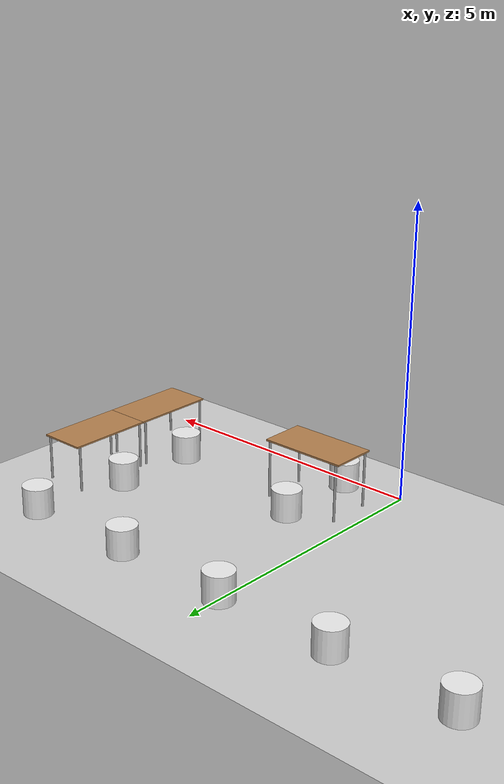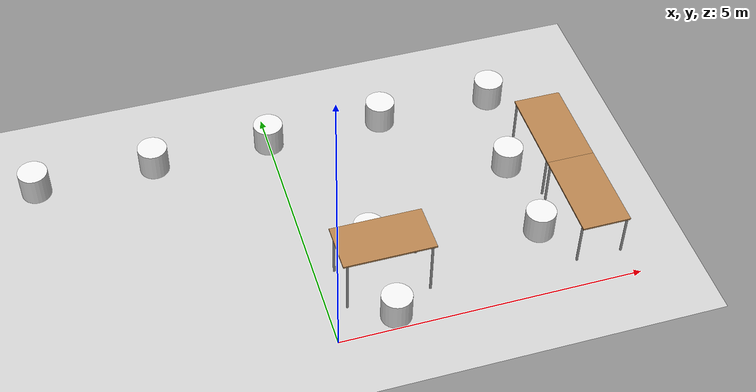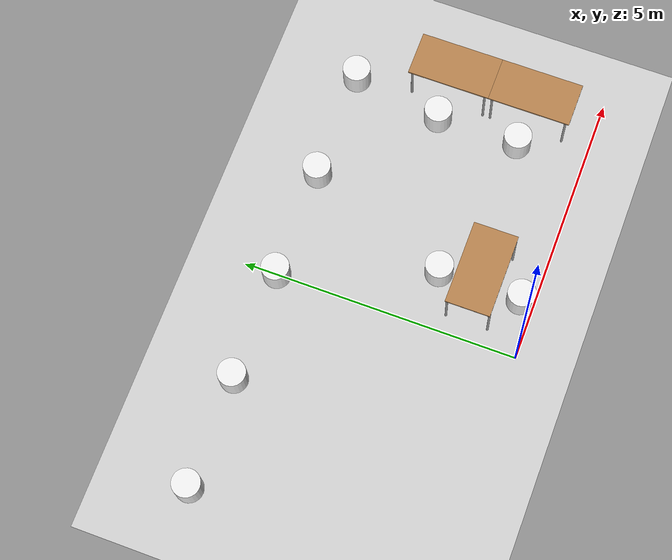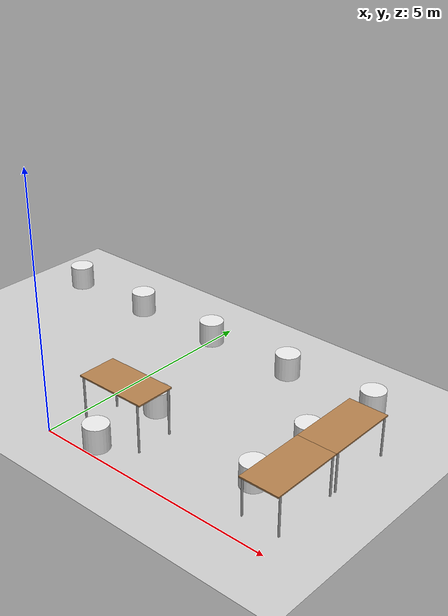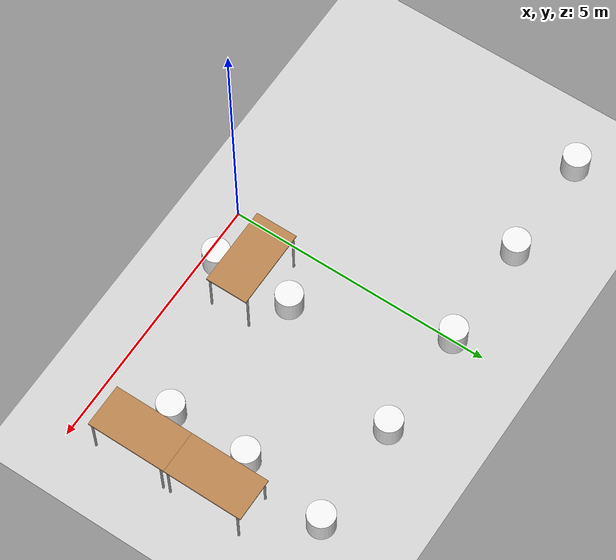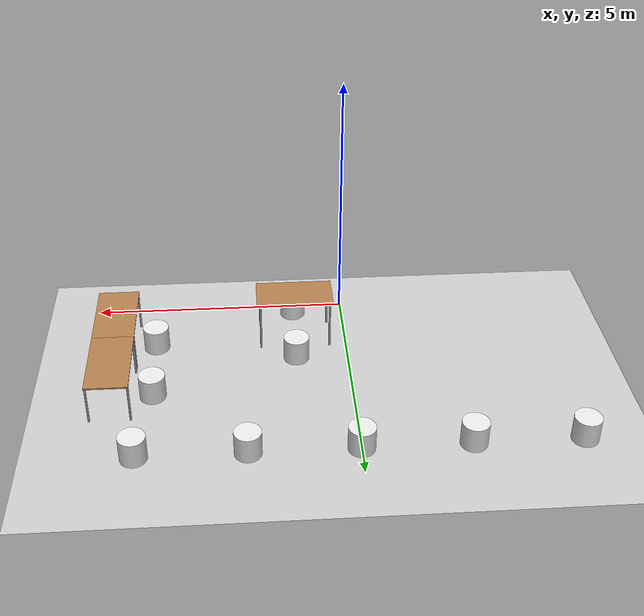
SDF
<sdf version="1.6">
 <world name="default">
  <model name="ground_plane">
   <static>1</static>
   <link name="link">
    <collision name="collision">
     <geometry><plane><normal>0 0 1</normal><size>100 100</size></plane></geometry>
     <surface>
      <contact><collide_bitmask>65535</collide_bitmask></contact>
      <friction><ode><mu>100</mu><mu2>50</mu2></ode></friction>
     </surface>
    </collision>
    <visual name="visual">
     <cast_shadows>0</cast_shadows>
     <geometry><plane><normal>0 0 1</normal><size>100 100</size></plane></geometry>
     <material>
      <script><uri>file://media/materials/scripts/gazebo.material</uri><name>Gazebo/Grey</name></script>
     </material>
    </visual>
   </link>
  </model>
  <model name="table">
   <static>1</static>
   <link name="link">
    <collision name="surface">
     <pose>0 0 1 0 -0 0</pose>
     <geometry><box><size>1.5 0.8 0.03</size></box></geometry>
     <surface><friction><ode><mu>0.6</mu><mu2>0.6</mu2></ode></friction></surface>
    </collision>
    <visual name="visual1">
     <pose>0 0 1 0 -0 0</pose>
     <geometry><box><size>1.5 0.8 0.03</size></box></geometry>
     <material>
      <script><uri>file://media/materials/scripts/gazebo.material</uri><name>Gazebo/Wood</name></script>
     </material>
    </visual>
    <collision name="front_left_leg">
     <pose>0.68 0.38 0.5 0 -0 0</pose>
     <geometry><cylinder><radius>0.02</radius><length>1</length></cylinder></geometry>
    </collision>
    <visual name="front_left_leg">
     <pose>0.68 0.38 0.5 0 -0 0</pose>
     <geometry><cylinder><radius>0.02</radius><length>1</length></cylinder></geometry>
     <material>
      <script><uri>file://media/materials/scripts/gazebo.material</uri><name>Gazebo/Grey</name></script>
     </material>
    </visual>
    <collision name="front_right_leg">
     <pose>0.68 -0.38 0.5 0 -0 0</pose>
     <geometry><cylinder><radius>0.02</radius><length>1</length></cylinder></geometry>
    </collision>
    <visual name="front_right_leg">
     <pose>0.68 -0.38 0.5 0 -0 0</pose>
     <geometry><cylinder><radius>0.02</radius><length>1</length></cylinder></geometry>
     <material>
      <script><uri>file://media/materials/scripts/gazebo.material</uri><name>Gazebo/Grey</name></script>
     </material>
    </visual>
    <collision name="back_right_leg">
     <pose>-0.68 -0.38 0.5 0 -0 0</pose>
     <geometry><cylinder><radius>0.02</radius><length>1</length></cylinder></geometry>
    </collision>
    <visual name="back_right_leg">
     <pose>-0.68 -0.38 0.5 0 -0 0</pose>
     <geometry><cylinder><radius>0.02</radius><length>1</length></cylinder></geometry>
     <material>
      <script><uri>file://media/materials/scripts/gazebo.material</uri><name>Gazebo/Grey</name></script>
     </material>
    </visual>
    <collision name="back_left_leg">
     <pose>-0.68 0.38 0.5 0 -0 0</pose>
     <geometry><cylinder><radius>0.02</radius><length>1</length></cylinder></geometry>
    </collision>
    <visual name="back_left_leg">
     <pose>-0.68 0.38 0.5 0 -0 0</pose>
     <geometry><cylinder><radius>0.02</radius><length>1</length></cylinder></geometry>
     <material>
      <script><uri>file://media/materials/scripts/gazebo.material</uri><name>Gazebo/Grey</name></script>
     </material>
    </visual>
   </link>
   <pose>1 1 0 0 -0 0</pose>
  </model>
  <model name="table_1">
   <static>1</static>
   <link name="link">
    <collision name="surface">
     <pose>0 0 1 0 -0 0</pose>
     <geometry><box><size>1.5 0.8 0.03</size></box></geometry>
     <surface><friction><ode><mu>0.6</mu><mu2>0.6</mu2></ode></friction></surface>
    </collision>
    <visual name="visual1">
     <pose>0 0 1 0 -0 0</pose>
     <geometry><box><size>1.5 0.8 0.03</size></box></geometry>
     <material>
      <script><uri>file://media/materials/scripts/gazebo.material</uri><name>Gazebo/Wood</name></script>
     </material>
    </visual>
    <collision name="front_left_leg">
     <pose>0.68 0.38 0.5 0 -0 0</pose>
     <geometry><cylinder><radius>0.02</radius><length>1</length></cylinder></geometry>
    </collision>
    <visual name="front_left_leg">
     <pose>0.68 0.38 0.5 0 -0 0</pose>
     <geometry><cylinder><radius>0.02</radius><length>1</length></cylinder></geometry>
     <material>
      <script><uri>file://media/materials/scripts/gazebo.material</uri><name>Gazebo/Grey</name></script>
     </material>
    </visual>
    <collision name="front_right_leg">
     <pose>0.68 -0.38 0.5 0 -0 0</pose>
     <geometry><cylinder><radius>0.02</radius><length>1</length></cylinder></geometry>
    </collision>
    <visual name="front_right_leg">
     <pose>0.68 -0.38 0.5 0 -0 0</pose>
     <geometry><cylinder><radius>0.02</radius><length>1</length></cylinder></geometry>
     <material>
      <script><uri>file://media/materials/scripts/gazebo.material</uri><name>Gazebo/Grey</name></script>
     </material>
    </visual>
    <collision name="back_right_leg">
     <pose>-0.68 -0.38 0.5 0 -0 0</pose>
     <geometry><cylinder><radius>0.02</radius><length>1</length></cylinder></geometry>
    </collision>
    <visual name="back_right_leg">
     <pose>-0.68 -0.38 0.5 0 -0 0</pose>
     <geometry><cylinder><radius>0.02</radius><length>1</length></cylinder></geometry>
     <material>
      <script><uri>file://media/materials/scripts/gazebo.material</uri><name>Gazebo/Grey</name></script>
     </material>
    </visual>
    <collision name="back_left_leg">
     <pose>-0.68 0.38 0.5 0 -0 0</pose>
     <geometry><cylinder><radius>0.02</radius><length>1</length></cylinder></geometry>
    </collision>
    <visual name="back_left_leg">
     <pose>-0.68 0.38 0.5 0 -0 0</pose>
     <geometry><cylinder><radius>0.02</radius><length>1</length></cylinder></geometry>
     <material>
      <script><uri>file://media/materials/scripts/gazebo.material</uri><name>Gazebo/Grey</name></script>
     </material>
    </visual>
   </link>
   <pose>4.5 2.7 -0.2 0 -0 1.5708</pose>
  </model>
  <model name="table_2">
   <static>1</static>
   <link name="link">
    <collision name="surface">
     <pose>0 0 1 0 -0 0</pose>
     <geometry><box><size>1.5 0.8 0.03</size></box></geometry>
     <surface><friction><ode><mu>0.6</mu><mu2>0.6</mu2></ode></friction></surface>
    </collision>
    <visual name="visual1">
     <pose>0 0 1 0 -0 0</pose>
     <geometry><box><size>1.5 0.8 0.03</size></box></geometry>
     <material>
      <script><uri>file://media/materials/scripts/gazebo.material</uri><name>Gazebo/Wood</name></script>
     </material>
    </visual>
    <collision name="front_left_leg">
     <pose>0.68 0.38 0.5 0 -0 0</pose>
     <geometry><cylinder><radius>0.02</radius><length>1</length></cylinder></geometry>
    </collision>
    <visual name="front_left_leg">
     <pose>0.68 0.38 0.5 0 -0 0</pose>
     <geometry><cylinder><radius>0.02</radius><length>1</length></cylinder></geometry>
     <material>
      <script><uri>file://media/materials/scripts/gazebo.material</uri><name>Gazebo/Grey</name></script>
     </material>
    </visual>
    <collision name="front_right_leg">
     <pose>0.68 -0.38 0.5 0 -0 0</pose>
     <geometry><cylinder><radius>0.02</radius><length>1</length></cylinder></geometry>
    </collision>
    <visual name="front_right_leg">
     <pose>0.68 -0.38 0.5 0 -0 0</pose>
     <geometry><cylinder><radius>0.02</radius><length>1</length></cylinder></geometry>
     <material>
      <script><uri>file://media/materials/scripts/gazebo.material</uri><name>Gazebo/Grey</name></script>
     </material>
    </visual>
    <collision name="back_right_leg">
     <pose>-0.68 -0.38 0.5 0 -0 0</pose>
     <geometry><cylinder><radius>0.02</radius><length>1</length></cylinder></geometry>
    </collision>
    <visual name="back_right_leg">
     <pose>-0.68 -0.38 0.5 0 -0 0</pose>
     <geometry><cylinder><radius>0.02</radius><length>1</length></cylinder></geometry>
     <material>
      <script><uri>file://media/materials/scripts/gazebo.material</uri><name>Gazebo/Grey</name></script>
     </material>
    </visual>
    <collision name="back_left_leg">
     <pose>-0.68 0.38 0.5 0 -0 0</pose>
     <geometry><cylinder><radius>0.02</radius><length>1</length></cylinder></geometry>
    </collision>
    <visual name="back_left_leg">
     <pose>-0.68 0.38 0.5 0 -0 0</pose>
     <geometry><cylinder><radius>0.02</radius><length>1</length></cylinder></geometry>
     <material>
      <script><uri>file://media/materials/scripts/gazebo.material</uri><name>Gazebo/Grey</name></script>
     </material>
    </visual>
   </link>
   <pose>4.5 1.2 -0.2 0 -0 1.5708</pose>
  </model>
  <model name="chair">
   <link name="link_1">
    <inertial>
     <mass>1</mass>
     <inertia><ixx>0.145833</ixx><ixy>0</ixy><ixz>0</ixz><iyy>0.145833</iyy><iyz>0</iyz><izz>0.125</izz></inertia>
    </inertial>
    <visual name="visual">
     <geometry><cylinder><radius>0.25</radius><length>0.5</length></cylinder></geometry>
     <material>
      <lighting>1</lighting>
      <script><uri>file://media/materials/scripts/gazebo.material</uri><name>Gazebo/White</name></script>
      <shader type="vertex"><normal_map>__default__</normal_map></shader>
      <ambient>0.9 0.7 0.5 1</ambient>
      <diffuse>0.7 0.7 0.7 1</diffuse>
      <specular>0.01 0.01 0.01 1</specular>
      <emissive>0 0 0 1</emissive>
     </material>
    </visual>
    <collision name="collision">
     <geometry><cylinder><radius>0.25</radius><length>0.5</length></cylinder></geometry>
     <surface>
      <friction>
       <ode><mu>1</mu><mu2>1</mu2><fdir1>0 0 0</fdir1><slip1>0</slip1><slip2>0</slip2></ode>
       <torsional>
        <coefficient>1</coefficient>
        <patch_radius>0</patch_radius>
        <surface_radius>0</surface_radius>
        <use_patch_radius>1</use_patch_radius>
        <ode><slip>0</slip></ode>
       </torsional>
      </friction>
      <bounce><restitution_coefficient>0</restitution_coefficient><threshold>1e+06</threshold></bounce>
      <contact>
       <collide_without_contact>0</collide_without_contact>
       <collide_without_contact_bitmask>1</collide_without_contact_bitmask>
       <collide_bitmask>1</collide_bitmask>
       <ode>
        <soft_cfm>0</soft_cfm>
        <soft_erp>0.2</soft_erp>
        <kp>1e+13</kp>
        <kd>1</kd>
        <max_vel>0.01</max_vel>
        <min_depth>0</min_depth>
       </ode>
       <bullet>
        <split_impulse>1</split_impulse>
        <split_impulse_penetration_threshold>-0.01</split_impulse_penetration_threshold>
        <soft_cfm>0</soft_cfm>
        <soft_erp>0.2</soft_erp>
        <kp>1e+13</kp>
        <kd>1</kd>
       </bullet>
      </contact>
     </surface>
    </collision>
   </link>
   <link name="link_1_clone">
    <inertial>
     <mass>1</mass>
     <inertia><ixx>0.145833</ixx><ixy>0</ixy><ixz>0</ixz><iyy>0.145833</iyy><iyz>0</iyz><izz>0.125</izz></inertia>
    </inertial>
    <pose>-2 0 0 0 -0 0</pose>
    <visual name="visual">
     <geometry><cylinder><radius>0.25</radius><length>0.5</length></cylinder></geometry>
     <material>
      <lighting>1</lighting>
      <script><uri>file://media/materials/scripts/gazebo.material</uri><name>Gazebo/White</name></script>
      <shader type="vertex"><normal_map>__default__</normal_map></shader>
      <ambient>0.9 0.7 0.5 1</ambient>
      <diffuse>0.7 0.7 0.7 1</diffuse>
      <specular>0.01 0.01 0.01 1</specular>
      <emissive>0 0 0 1</emissive>
     </material>
    </visual>
    <collision name="collision">
     <geometry><cylinder><radius>0.25</radius><length>0.5</length></cylinder></geometry>
     <surface>
      <friction>
       <ode><mu>1</mu><mu2>1</mu2><fdir1>0 0 0</fdir1><slip1>0</slip1><slip2>0</slip2></ode>
       <torsional>
        <coefficient>1</coefficient>
        <patch_radius>0</patch_radius>
        <surface_radius>0</surface_radius>
        <use_patch_radius>1</use_patch_radius>
        <ode><slip>0</slip></ode>
       </torsional>
      </friction>
      <bounce><restitution_coefficient>0</restitution_coefficient><threshold>1e+06</threshold></bounce>
      <contact>
       <collide_without_contact>0</collide_without_contact>
       <collide_without_contact_bitmask>1</collide_without_contact_bitmask>
       <collide_bitmask>1</collide_bitmask>
       <ode>
        <soft_cfm>0</soft_cfm>
        <soft_erp>0.2</soft_erp>
        <kp>1e+13</kp>
        <kd>1</kd>
        <max_vel>0.01</max_vel>
        <min_depth>0</min_depth>
       </ode>
       <bullet>
        <split_impulse>1</split_impulse>
        <split_impulse_penetration_threshold>-0.01</split_impulse_penetration_threshold>
        <soft_cfm>0</soft_cfm>
        <soft_erp>0.2</soft_erp>
        <kp>1e+13</kp>
        <kd>1</kd>
       </bullet>
      </contact>
     </surface>
    </collision>
   </link>
   <link name="link_1_clone_0_clone">
    <inertial>
     <mass>1</mass>
     <inertia><ixx>0.145833</ixx><ixy>0</ixy><ixz>0</ixz><iyy>0.145833</iyy><iyz>0</iyz><izz>0.125</izz></inertia>
    </inertial>
    <pose>-4 0 0 0 -0 0</pose>
    <visual name="visual">
     <geometry><cylinder><radius>0.25</radius><length>0.5</length></cylinder></geometry>
     <material>
      <lighting>1</lighting>
      <script><uri>file://media/materials/scripts/gazebo.material</uri><name>Gazebo/White</name></script>
      <shader type="vertex"><normal_map>__default__</normal_map></shader>
      <ambient>0.9 0.7 0.5 1</ambient>
      <diffuse>0.7 0.7 0.7 1</diffuse>
      <specular>0.01 0.01 0.01 1</specular>
      <emissive>0 0 0 1</emissive>
     </material>
    </visual>
    <collision name="collision">
     <geometry><cylinder><radius>0.25</radius><length>0.5</length></cylinder></geometry>
     <surface>
      <friction>
       <ode><mu>1</mu><mu2>1</mu2><fdir1>0 0 0</fdir1><slip1>0</slip1><slip2>0</slip2></ode>
       <torsional>
        <coefficient>1</coefficient>
        <patch_radius>0</patch_radius>
        <surface_radius>0</surface_radius>
        <use_patch_radius>1</use_patch_radius>
        <ode><slip>0</slip></ode>
       </torsional>
      </friction>
      <bounce><restitution_coefficient>0</restitution_coefficient><threshold>1e+06</threshold></bounce>
      <contact>
       <collide_without_contact>0</collide_without_contact>
       <collide_without_contact_bitmask>1</collide_without_contact_bitmask>
       <collide_bitmask>1</collide_bitmask>
       <ode>
        <soft_cfm>0</soft_cfm>
        <soft_erp>0.2</soft_erp>
        <kp>1e+13</kp>
        <kd>1</kd>
        <max_vel>0.01</max_vel>
        <min_depth>0</min_depth>
       </ode>
       <bullet>
        <split_impulse>1</split_impulse>
        <split_impulse_penetration_threshold>-0.01</split_impulse_penetration_threshold>
        <soft_cfm>0</soft_cfm>
        <soft_erp>0.2</soft_erp>
        <kp>1e+13</kp>
        <kd>1</kd>
       </bullet>
      </contact>
     </surface>
    </collision>
   </link>
   <link name="link_1_clone_0_clone_clone">
    <inertial>
     <mass>1</mass>
     <inertia><ixx>0.145833</ixx><ixy>0</ixy><ixz>0</ixz><iyy>0.145833</iyy><iyz>0</iyz><izz>0.125</izz></inertia>
    </inertial>
    <pose>-6 0 0 0 -0 0</pose>
    <visual name="visual">
     <geometry><cylinder><radius>0.25</radius><length>0.5</length></cylinder></geometry>
     <material>
      <lighting>1</lighting>
      <script><uri>file://media/materials/scripts/gazebo.material</uri><name>Gazebo/White</name></script>
      <shader type="vertex"><normal_map>__default__</normal_map></shader>
      <ambient>0.9 0.7 0.5 1</ambient>
      <diffuse>0.7 0.7 0.7 1</diffuse>
      <specular>0.01 0.01 0.01 1</specular>
      <emissive>0 0 0 1</emissive>
     </material>
    </visual>
    <collision name="collision">
     <geometry><cylinder><radius>0.25</radius><length>0.5</length></cylinder></geometry>
     <surface>
      <friction>
       <ode><mu>1</mu><mu2>1</mu2><fdir1>0 0 0</fdir1><slip1>0</slip1><slip2>0</slip2></ode>
       <torsional>
        <coefficient>1</coefficient>
        <patch_radius>0</patch_radius>
        <surface_radius>0</surface_radius>
        <use_patch_radius>1</use_patch_radius>
        <ode><slip>0</slip></ode>
       </torsional>
      </friction>
      <bounce><restitution_coefficient>0</restitution_coefficient><threshold>1e+06</threshold></bounce>
      <contact>
       <collide_without_contact>0</collide_without_contact>
       <collide_without_contact_bitmask>1</collide_without_contact_bitmask>
       <collide_bitmask>1</collide_bitmask>
       <ode>
        <soft_cfm>0</soft_cfm>
        <soft_erp>0.2</soft_erp>
        <kp>1e+13</kp>
        <kd>1</kd>
        <max_vel>0.01</max_vel>
        <min_depth>0</min_depth>
       </ode>
       <bullet>
        <split_impulse>1</split_impulse>
        <split_impulse_penetration_threshold>-0.01</split_impulse_penetration_threshold>
        <soft_cfm>0</soft_cfm>
        <soft_erp>0.2</soft_erp>
        <kp>1e+13</kp>
        <kd>1</kd>
       </bullet>
      </contact>
     </surface>
    </collision>
   </link>
   <link name="link_1_clone_0_clone_clone_clone_clone">
    <inertial>
     <mass>1</mass>
     <inertia><ixx>0.145833</ixx><ixy>0</ixy><ixz>0</ixz><iyy>0.145833</iyy><iyz>0</iyz><izz>0.125</izz></inertia>
    </inertial>
    <pose>-8 0 0 0 -0 0</pose>
    <visual name="visual">
     <geometry><cylinder><radius>0.25</radius><length>0.5</length></cylinder></geometry>
     <material>
      <lighting>1</lighting>
      <script><uri>file://media/materials/scripts/gazebo.material</uri><name>Gazebo/White</name></script>
      <shader type="vertex"><normal_map>__default__</normal_map></shader>
      <ambient>0.9 0.7 0.5 1</ambient>
      <diffuse>0.7 0.7 0.7 1</diffuse>
      <specular>0.01 0.01 0.01 1</specular>
      <emissive>0 0 0 1</emissive>
     </material>
    </visual>
    <collision name="collision">
     <geometry><cylinder><radius>0.25</radius><length>0.5</length></cylinder></geometry>
     <surface>
      <friction>
       <ode><mu>1</mu><mu2>1</mu2><fdir1>0 0 0</fdir1><slip1>0</slip1><slip2>0</slip2></ode>
       <torsional>
        <coefficient>1</coefficient>
        <patch_radius>0</patch_radius>
        <surface_radius>0</surface_radius>
        <use_patch_radius>1</use_patch_radius>
        <ode><slip>0</slip></ode>
       </torsional>
      </friction>
      <bounce><restitution_coefficient>0</restitution_coefficient><threshold>1e+06</threshold></bounce>
      <contact>
       <collide_without_contact>0</collide_without_contact>
       <collide_without_contact_bitmask>1</collide_without_contact_bitmask>
       <collide_bitmask>1</collide_bitmask>
       <ode>
        <soft_cfm>0</soft_cfm>
        <soft_erp>0.2</soft_erp>
        <kp>1e+13</kp>
        <kd>1</kd>
        <max_vel>0.01</max_vel>
        <min_depth>0</min_depth>
       </ode>
       <bullet>
        <split_impulse>1</split_impulse>
        <split_impulse_penetration_threshold>-0.01</split_impulse_penetration_threshold>
        <soft_cfm>0</soft_cfm>
        <soft_erp>0.2</soft_erp>
        <kp>1e+13</kp>
        <kd>1</kd>
       </bullet>
      </contact>
     </surface>
    </collision>
   </link>
   <static>0</static>
   <pose>4 4.4 0.25 0 -0 0</pose>
  </model>
  <model name="chair3">
   <link name="link_1">
    <inertial>
     <mass>1</mass>
     <inertia><ixx>0.145833</ixx><ixy>0</ixy><ixz>0</ixz><iyy>0.145833</iyy><iyz>0</iyz><izz>0.125</izz></inertia>
    </inertial>
    <visual name="visual">
     <geometry><cylinder><radius>0.25</radius><length>0.5</length></cylinder></geometry>
     <material>
      <lighting>1</lighting>
      <script><uri>file://media/materials/scripts/gazebo.material</uri><name>Gazebo/White</name></script>
      <shader type="vertex"><normal_map>__default__</normal_map></shader>
      <ambient>0.9 0.7 0.5 1</ambient>
      <diffuse>0.7 0.7 0.7 1</diffuse>
      <specular>0.01 0.01 0.01 1</specular>
      <emissive>0 0 0 1</emissive>
     </material>
    </visual>
    <collision name="collision">
     <geometry><cylinder><radius>0.25</radius><length>0.5</length></cylinder></geometry>
     <surface>
      <friction>
       <ode><mu>1</mu><mu2>1</mu2><fdir1>0 0 0</fdir1><slip1>0</slip1><slip2>0</slip2></ode>
       <torsional>
        <coefficient>1</coefficient>
        <patch_radius>0</patch_radius>
        <surface_radius>0</surface_radius>
        <use_patch_radius>1</use_patch_radius>
        <ode><slip>0</slip></ode>
       </torsional>
      </friction>
      <bounce><restitution_coefficient>0</restitution_coefficient><threshold>1e+06</threshold></bounce>
      <contact>
       <collide_without_contact>0</collide_without_contact>
       <collide_without_contact_bitmask>1</collide_without_contact_bitmask>
       <collide_bitmask>1</collide_bitmask>
       <ode>
        <soft_cfm>0</soft_cfm>
        <soft_erp>0.2</soft_erp>
        <kp>1e+13</kp>
        <kd>1</kd>
        <max_vel>0.01</max_vel>
        <min_depth>0</min_depth>
       </ode>
       <bullet>
        <split_impulse>1</split_impulse>
        <split_impulse_penetration_threshold>-0.01</split_impulse_penetration_threshold>
        <soft_cfm>0</soft_cfm>
        <soft_erp>0.2</soft_erp>
        <kp>1e+13</kp>
        <kd>1</kd>
       </bullet>
      </contact>
     </surface>
    </collision>
   </link>
   <link name="link_1_clone">
    <inertial>
     <mass>1</mass>
     <inertia><ixx>0.145833</ixx><ixy>0</ixy><ixz>0</ixz><iyy>0.145833</iyy><iyz>0</iyz><izz>0.125</izz></inertia>
    </inertial>
    <pose>0 -1.5 0 0 -0 0</pose>
    <visual name="visual">
     <geometry><cylinder><radius>0.25</radius><length>0.5</length></cylinder></geometry>
     <material>
      <lighting>1</lighting>
      <script><uri>file://media/materials/scripts/gazebo.material</uri><name>Gazebo/White</name></script>
      <shader type="vertex"><normal_map>__default__</normal_map></shader>
      <ambient>0.9 0.7 0.5 1</ambient>
      <diffuse>0.7 0.7 0.7 1</diffuse>
      <specular>0.01 0.01 0.01 1</specular>
      <emissive>0 0 0 1</emissive>
     </material>
    </visual>
    <collision name="collision">
     <geometry><cylinder><radius>0.25</radius><length>0.5</length></cylinder></geometry>
     <surface>
      <friction>
       <ode><mu>1</mu><mu2>1</mu2><fdir1>0 0 0</fdir1><slip1>0</slip1><slip2>0</slip2></ode>
       <torsional>
        <coefficient>1</coefficient>
        <patch_radius>0</patch_radius>
        <surface_radius>0</surface_radius>
        <use_patch_radius>1</use_patch_radius>
        <ode><slip>0</slip></ode>
       </torsional>
      </friction>
      <bounce><restitution_coefficient>0</restitution_coefficient><threshold>1e+06</threshold></bounce>
      <contact>
       <collide_without_contact>0</collide_without_contact>
       <collide_without_contact_bitmask>1</collide_without_contact_bitmask>
       <collide_bitmask>1</collide_bitmask>
       <ode>
        <soft_cfm>0</soft_cfm>
        <soft_erp>0.2</soft_erp>
        <kp>1e+13</kp>
        <kd>1</kd>
        <max_vel>0.01</max_vel>
        <min_depth>0</min_depth>
       </ode>
       <bullet>
        <split_impulse>1</split_impulse>
        <split_impulse_penetration_threshold>-0.01</split_impulse_penetration_threshold>
        <soft_cfm>0</soft_cfm>
        <soft_erp>0.2</soft_erp>
        <kp>1e+13</kp>
        <kd>1</kd>
       </bullet>
      </contact>
     </surface>
    </collision>
   </link>
   <static>0</static>
   <pose>3.75 2.75 0.25 0 -0 0</pose>
  </model>
  <model name="chair3_0">
   <link name="link_1">
    <inertial>
     <mass>1</mass>
     <inertia><ixx>0.145833</ixx><ixy>0</ixy><ixz>0</ixz><iyy>0.145833</iyy><iyz>0</iyz><izz>0.125</izz></inertia>
    </inertial>
    <visual name="visual">
     <geometry><cylinder><radius>0.25</radius><length>0.5</length></cylinder></geometry>
     <material>
      <lighting>1</lighting>
      <script><uri>file://media/materials/scripts/gazebo.material</uri><name>Gazebo/White</name></script>
      <shader type="vertex"><normal_map>__default__</normal_map></shader>
      <ambient>0.9 0.7 0.5 1</ambient>
      <diffuse>0.7 0.7 0.7 1</diffuse>
      <specular>0.01 0.01 0.01 1</specular>
      <emissive>0 0 0 1</emissive>
     </material>
    </visual>
    <collision name="collision">
     <geometry><cylinder><radius>0.25</radius><length>0.5</length></cylinder></geometry>
     <surface>
      <friction>
       <ode><mu>1</mu><mu2>1</mu2><fdir1>0 0 0</fdir1><slip1>0</slip1><slip2>0</slip2></ode>
       <torsional>
        <coefficient>1</coefficient>
        <patch_radius>0</patch_radius>
        <surface_radius>0</surface_radius>
        <use_patch_radius>1</use_patch_radius>
        <ode><slip>0</slip></ode>
       </torsional>
      </friction>
      <bounce><restitution_coefficient>0</restitution_coefficient><threshold>1e+06</threshold></bounce>
      <contact>
       <collide_without_contact>0</collide_without_contact>
       <collide_without_contact_bitmask>1</collide_without_contact_bitmask>
       <collide_bitmask>1</collide_bitmask>
       <ode>
        <soft_cfm>0</soft_cfm>
        <soft_erp>0.2</soft_erp>
        <kp>1e+13</kp>
        <kd>1</kd>
        <max_vel>0.01</max_vel>
        <min_depth>0</min_depth>
       </ode>
       <bullet>
        <split_impulse>1</split_impulse>
        <split_impulse_penetration_threshold>-0.01</split_impulse_penetration_threshold>
        <soft_cfm>0</soft_cfm>
        <soft_erp>0.2</soft_erp>
        <kp>1e+13</kp>
        <kd>1</kd>
       </bullet>
      </contact>
     </surface>
    </collision>
   </link>
   <link name="link_1_clone">
    <inertial>
     <mass>1</mass>
     <inertia><ixx>0.145833</ixx><ixy>0</ixy><ixz>0</ixz><iyy>0.145833</iyy><iyz>0</iyz><izz>0.125</izz></inertia>
    </inertial>
    <pose>0 -1.5 0 0 -0 0</pose>
    <visual name="visual">
     <geometry><cylinder><radius>0.25</radius><length>0.5</length></cylinder></geometry>
     <material>
      <lighting>1</lighting>
      <script><uri>file://media/materials/scripts/gazebo.material</uri><name>Gazebo/White</name></script>
      <shader type="vertex"><normal_map>__default__</normal_map></shader>
      <ambient>0.9 0.7 0.5 1</ambient>
      <diffuse>0.7 0.7 0.7 1</diffuse>
      <specular>0.01 0.01 0.01 1</specular>
      <emissive>0 0 0 1</emissive>
     </material>
    </visual>
    <collision name="collision">
     <geometry><cylinder><radius>0.25</radius><length>0.5</length></cylinder></geometry>
     <surface>
      <friction>
       <ode><mu>1</mu><mu2>1</mu2><fdir1>0 0 0</fdir1><slip1>0</slip1><slip2>0</slip2></ode>
       <torsional>
        <coefficient>1</coefficient>
        <patch_radius>0</patch_radius>
        <surface_radius>0</surface_radius>
        <use_patch_radius>1</use_patch_radius>
        <ode><slip>0</slip></ode>
       </torsional>
      </friction>
      <bounce><restitution_coefficient>0</restitution_coefficient><threshold>1e+06</threshold></bounce>
      <contact>
       <collide_without_contact>0</collide_without_contact>
       <collide_without_contact_bitmask>1</collide_without_contact_bitmask>
       <collide_bitmask>1</collide_bitmask>
       <ode>
        <soft_cfm>0</soft_cfm>
        <soft_erp>0.2</soft_erp>
        <kp>1e+13</kp>
        <kd>1</kd>
        <max_vel>0.01</max_vel>
        <min_depth>0</min_depth>
       </ode>
       <bullet>
        <split_impulse>1</split_impulse>
        <split_impulse_penetration_threshold>-0.01</split_impulse_penetration_threshold>
        <soft_cfm>0</soft_cfm>
        <soft_erp>0.2</soft_erp>
        <kp>1e+13</kp>
        <kd>1</kd>
       </bullet>
      </contact>
     </surface>
    </collision>
   </link>
   <static>0</static>
   <pose>1 1.75 0.25 0 -0 0</pose>
  </model>
 </world>
</sdf>
